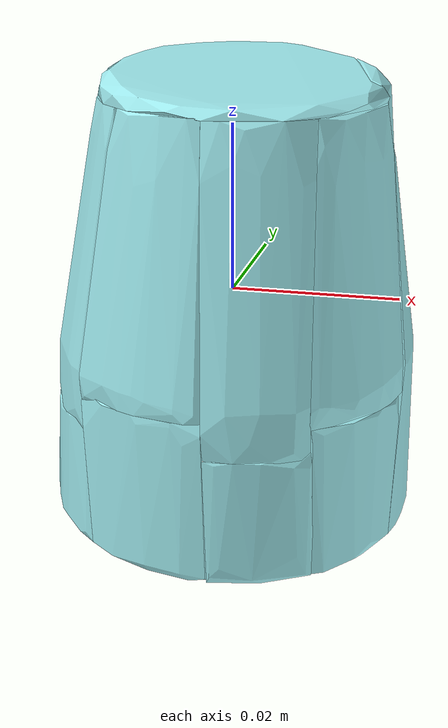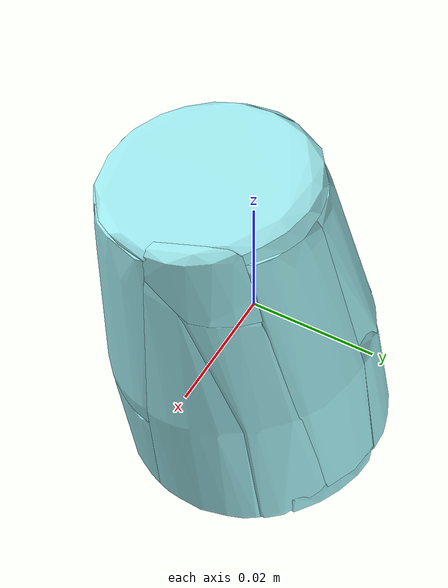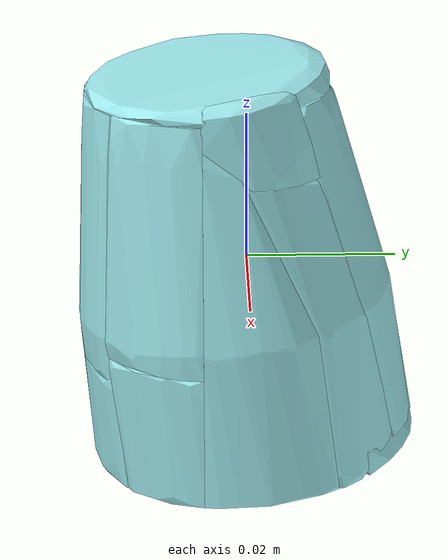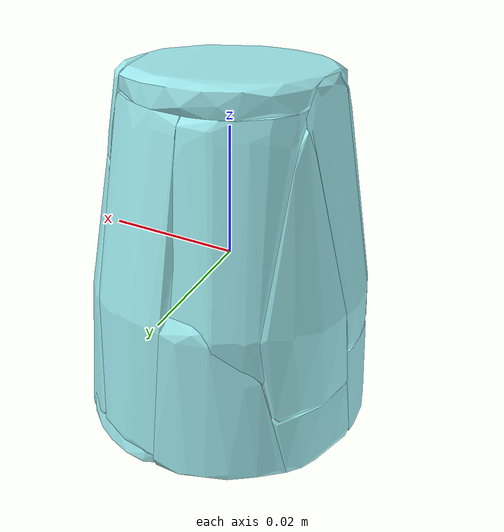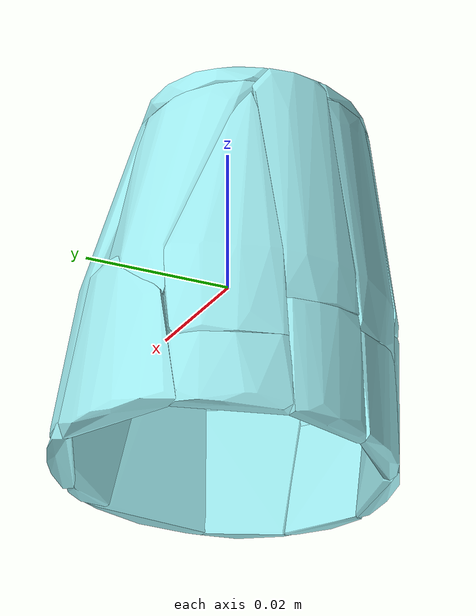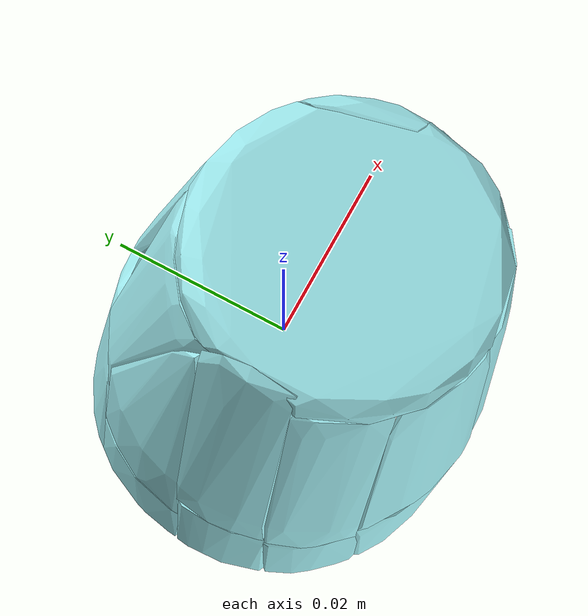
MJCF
<mujoco model="SmallGlass">
  <asset>
    <mesh file="meshes/SmallGlass/SmallGlass_0.stl" name="SmallGlass_0" scale="1 1 0.9"/>
    <mesh file="meshes/SmallGlass/SmallGlass_1.stl" name="SmallGlass_1" scale="1 1 0.9"/>
    <mesh file="meshes/SmallGlass/SmallGlass_2.stl" name="SmallGlass_2" scale="1 1 0.9"/>
    <mesh file="meshes/SmallGlass/SmallGlass_3.stl" name="SmallGlass_3" scale="1 1 0.9"/>
    <mesh file="meshes/SmallGlass/SmallGlass_4.stl" name="SmallGlass_4" scale="1 1 0.9"/>
    <mesh file="meshes/SmallGlass/SmallGlass_5.stl" name="SmallGlass_5" scale="1 1 0.9"/>
    <mesh file="meshes/SmallGlass/SmallGlass_6.stl" name="SmallGlass_6" scale="1 1 0.9"/>
    <mesh file="meshes/SmallGlass/SmallGlass_7.stl" name="SmallGlass_7" scale="1 1 0.9"/>
    <mesh file="meshes/SmallGlass/SmallGlass_8.stl" name="SmallGlass_8" scale="1 1 0.9"/>
    <mesh file="meshes/SmallGlass/SmallGlass_9.stl" name="SmallGlass_9" scale="1 1 0.9"/>
    <mesh file="meshes/SmallGlass/SmallGlass_10.stl" name="SmallGlass_10" scale="1 1 0.9"/>
    <mesh file="meshes/SmallGlass/SmallGlass_11.stl" name="SmallGlass_11" scale="1 1 0.9"/>
    <mesh file="meshes/SmallGlass/SmallGlass_12.stl" name="SmallGlass_12" scale="1 1 0.9"/>
    <mesh file="meshes/SmallGlass/SmallGlass_13.stl" name="SmallGlass_13" scale="1 1 0.9"/>
    <mesh file="meshes/SmallGlass/SmallGlass_14.stl" name="SmallGlass_14" scale="1 1 0.9"/>
    <mesh file="meshes/SmallGlass/SmallGlass_15.stl" name="SmallGlass_15" scale="1 1 0.9"/>
    <mesh file="meshes/SmallGlass/SmallGlass_16.stl" name="SmallGlass_16" scale="1 1 0.9"/>
    <mesh file="meshes/SmallGlass/SmallGlass_17.stl" name="SmallGlass_17" scale="1 1 0.9"/>
    <mesh file="meshes/SmallGlass/SmallGlass_18.stl" name="SmallGlass_18" scale="1 1 0.9"/>
    <mesh file="meshes/SmallGlass/SmallGlass_19.stl" name="SmallGlass_19" scale="1 1 0.9"/>
  </asset>
  <worldbody>
    <body>
      <body name="collision">
        <geom condim="4" density="100" friction="1.8 0.3 0.1" group="1" mesh="SmallGlass_0" pos="0 0 0" rgba="0.6353 0.937 0.953 1" solimp="0.998 0.998 0.001" solref="0.002 1" type="mesh"/>
        <geom condim="4" density="100" friction="1.8 0.3 0.1" group="1" mesh="SmallGlass_1" pos="0 0 0" rgba="0.6353 0.937 0.953 1" solimp="0.998 0.998 0.001" solref="0.002 1" type="mesh"/>
        <geom condim="4" density="100" friction="1.8 0.3 0.1" group="1" mesh="SmallGlass_2" pos="0 0 0" rgba="0.6353 0.937 0.953 1" solimp="0.998 0.998 0.001" solref="0.002 1" type="mesh"/>
        <geom condim="4" density="100" friction="1.8 0.3 0.1" group="1" mesh="SmallGlass_3" pos="0 0 0" rgba="0.6353 0.937 0.953 1" solimp="0.998 0.998 0.001" solref="0.002 1" type="mesh"/>
        <geom condim="4" density="100" friction="1.8 0.3 0.1" group="1" mesh="SmallGlass_4" pos="0 0 0" rgba="0.6353 0.937 0.953 1" solimp="0.998 0.998 0.001" solref="0.002 1" type="mesh"/>
        <geom condim="4" density="100" friction="1.8 0.3 0.1" group="1" mesh="SmallGlass_5" pos="0 0 0" rgba="0.6353 0.937 0.953 1" solimp="0.998 0.998 0.001" solref="0.002 1" type="mesh"/>
        <geom condim="4" density="100" friction="1.8 0.3 0.1" group="1" mesh="SmallGlass_6" pos="0 0 0" rgba="0.6353 0.937 0.953 1" solimp="0.998 0.998 0.001" solref="0.002 1" type="mesh"/>
        <geom condim="4" density="100" friction="1.8 0.3 0.1" group="1" mesh="SmallGlass_7" pos="0 0 0" rgba="0.6353 0.937 0.953 1" solimp="0.998 0.998 0.001" solref="0.002 1" type="mesh"/>
        <geom condim="4" density="100" friction="1.8 0.3 0.1" group="1" mesh="SmallGlass_8" pos="0 0 0" rgba="0.6353 0.937 0.953 1" solimp="0.998 0.998 0.001" solref="0.002 1" type="mesh"/>
        <geom condim="4" density="100" friction="1.8 0.3 0.1" group="1" mesh="SmallGlass_9" pos="0 0 0" rgba="0.6353 0.937 0.953 1" solimp="0.998 0.998 0.001" solref="0.002 1" type="mesh"/>
        <geom condim="4" density="100" friction="1.8 0.3 0.1" group="1" mesh="SmallGlass_10" pos="0 0 0" rgba="0.6353 0.937 0.953 1" solimp="0.998 0.998 0.001" solref="0.002 1" type="mesh"/>
        <geom condim="4" density="100" friction="1.8 0.3 0.1" group="1" mesh="SmallGlass_11" pos="0 0 0" rgba="0.6353 0.937 0.953 1" solimp="0.998 0.998 0.001" solref="0.002 1" type="mesh"/>
        <geom condim="4" density="100" friction="1.8 0.3 0.1" group="1" mesh="SmallGlass_12" pos="0 0 0" rgba="0.6353 0.937 0.953 1" solimp="0.998 0.998 0.001" solref="0.002 1" type="mesh"/>
        <geom condim="4" density="100" friction="1.8 0.3 0.1" group="1" mesh="SmallGlass_13" pos="0 0 0" rgba="0.6353 0.937 0.953 1" solimp="0.998 0.998 0.001" solref="0.002 1" type="mesh"/>
        <geom condim="4" density="100" friction="1.8 0.3 0.1" group="1" mesh="SmallGlass_14" pos="0 0 0" rgba="0.6353 0.937 0.953 1" solimp="0.998 0.998 0.001" solref="0.002 1" type="mesh"/>
        <geom condim="4" density="100" friction="1.8 0.3 0.1" group="1" mesh="SmallGlass_15" pos="0 0 0" rgba="0.6353 0.937 0.953 1" solimp="0.998 0.998 0.001" solref="0.002 1" type="mesh"/>
        <geom condim="4" density="100" friction="1.8 0.3 0.1" group="1" mesh="SmallGlass_16" pos="0 0 0" rgba="0.6353 0.937 0.953 1" solimp="0.998 0.998 0.001" solref="0.002 1" type="mesh"/>
        <geom condim="4" density="100" friction="1.8 0.3 0.1" group="1" mesh="SmallGlass_17" pos="0 0 0" rgba="0.6353 0.937 0.953 1" solimp="0.998 0.998 0.001" solref="0.002 1" type="mesh"/>
        <geom condim="4" density="100" friction="1.8 0.3 0.1" group="1" mesh="SmallGlass_18" pos="0 0 0" rgba="0.6353 0.937 0.953 1" solimp="0.998 0.998 0.001" solref="0.002 1" type="mesh"/>
        <geom condim="4" density="100" friction="1.8 0.3 0.1" group="1" mesh="SmallGlass_19" pos="0 0 0" rgba="0.6353 0.937 0.953 1" solimp="0.998 0.998 0.001" solref="0.002 1" type="mesh"/>
      </body>
      <body name="visual">
        <geom conaffinity="0" contype="0" group="0" mass="0.0001" mesh="SmallGlass_0" pos="0 0 0" rgba="0.6353 0.937 0.953 1" type="mesh"/>
        <geom conaffinity="0" contype="0" group="0" mass="0.0001" mesh="SmallGlass_1" pos="0 0 0" rgba="0.6353 0.937 0.953 1" type="mesh"/>
        <geom conaffinity="0" contype="0" group="0" mass="0.0001" mesh="SmallGlass_2" pos="0 0 0" rgba="0.6353 0.937 0.953 1" type="mesh"/>
        <geom conaffinity="0" contype="0" group="0" mass="0.0001" mesh="SmallGlass_3" pos="0 0 0" rgba="0.6353 0.937 0.953 1" type="mesh"/>
        <geom conaffinity="0" contype="0" group="0" mass="0.0001" mesh="SmallGlass_4" pos="0 0 0" rgba="0.6353 0.937 0.953 1" type="mesh"/>
        <geom conaffinity="0" contype="0" group="0" mass="0.0001" mesh="SmallGlass_5" pos="0 0 0" rgba="0.6353 0.937 0.953 1" type="mesh"/>
        <geom conaffinity="0" contype="0" group="0" mass="0.0001" mesh="SmallGlass_6" pos="0 0 0" rgba="0.6353 0.937 0.953 1" type="mesh"/>
        <geom conaffinity="0" contype="0" group="0" mass="0.0001" mesh="SmallGlass_7" pos="0 0 0" rgba="0.6353 0.937 0.953 1" type="mesh"/>
        <geom conaffinity="0" contype="0" group="0" mass="0.0001" mesh="SmallGlass_8" pos="0 0 0" rgba="0.6353 0.937 0.953 1" type="mesh"/>
        <geom conaffinity="0" contype="0" group="0" mass="0.0001" mesh="SmallGlass_9" pos="0 0 0" rgba="0.6353 0.937 0.953 1" type="mesh"/>
        <geom conaffinity="0" contype="0" group="0" mass="0.0001" mesh="SmallGlass_10" pos="0 0 0" rgba="0.6353 0.937 0.953 1" type="mesh"/>
        <geom conaffinity="0" contype="0" group="0" mass="0.0001" mesh="SmallGlass_11" pos="0 0 0" rgba="0.6353 0.937 0.953 1" type="mesh"/>
        <geom conaffinity="0" contype="0" group="0" mass="0.0001" mesh="SmallGlass_12" pos="0 0 0" rgba="0.6353 0.937 0.953 1" type="mesh"/>
        <geom conaffinity="0" contype="0" group="0" mass="0.0001" mesh="SmallGlass_13" pos="0 0 0" rgba="0.6353 0.937 0.953 1" type="mesh"/>
        <geom conaffinity="0" contype="0" group="0" mass="0.0001" mesh="SmallGlass_14" pos="0 0 0" rgba="0.6353 0.937 0.953 1" type="mesh"/>
        <geom conaffinity="0" contype="0" group="0" mass="0.0001" mesh="SmallGlass_15" pos="0 0 0" rgba="0.6353 0.937 0.953 1" type="mesh"/>
        <geom conaffinity="0" contype="0" group="0" mass="0.0001" mesh="SmallGlass_16" pos="0 0 0" rgba="0.6353 0.937 0.953 1" type="mesh"/>
        <geom conaffinity="0" contype="0" group="0" mass="0.0001" mesh="SmallGlass_17" pos="0 0 0" rgba="0.6353 0.937 0.953 1" type="mesh"/>
        <geom conaffinity="0" contype="0" group="0" mass="0.0001" mesh="SmallGlass_18" pos="0 0 0" rgba="0.6353 0.937 0.953 1" type="mesh"/>
        <geom conaffinity="0" contype="0" group="0" mass="0.0001" mesh="SmallGlass_19" pos="0 0 0" rgba="0.6353 0.937 0.953 1" type="mesh"/>
      </body>
      <site name="bottom_site" pos="0 0 -0.06" rgba="0 0 0 0" size="0.005"/>
      <site name="top_site" pos="0 0 0.04" rgba="0 0 0 0" size="0.005"/>
      <site name="horizontal_radius_site" pos="0.025 0.025 0" rgba="0 0 0 0" size="0.005"/>
    </body>
  </worldbody>
</mujoco>
